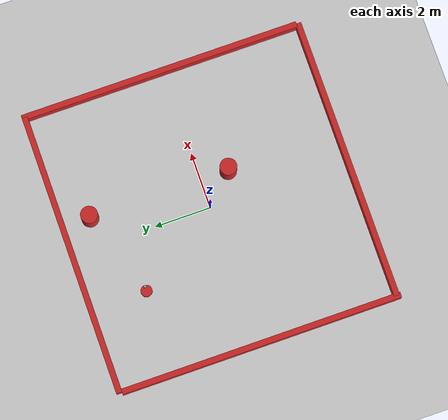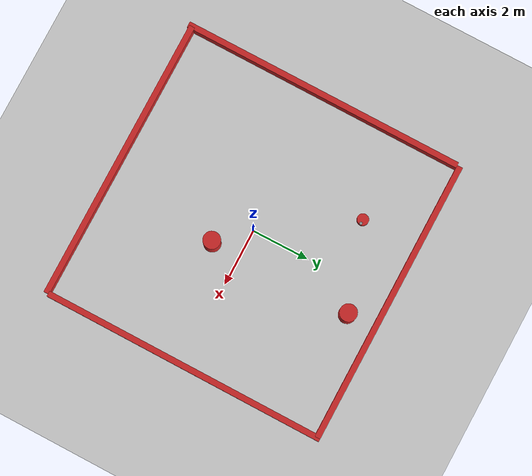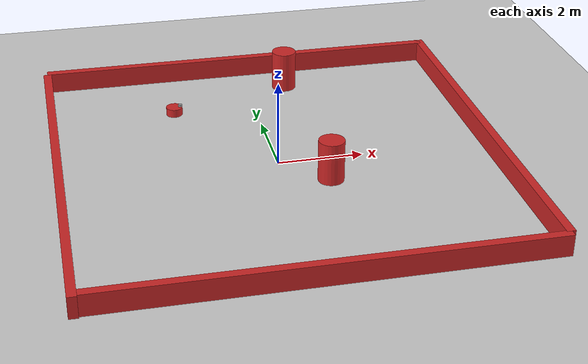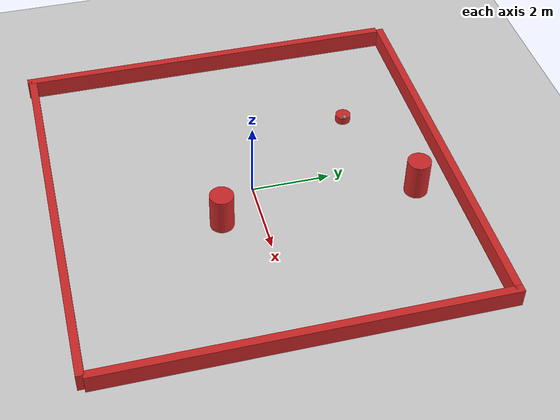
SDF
<?xml version="1.0"?>
<sdf version="1.4">
  <world name="default">
    <!-- World Camera -->
    <gui>
        <camera name='camera_view'>
        <pose>-12 0 3 0 0.2 0</pose>
        </camera>
    </gui>

    <!-- Ground -->
    <include>
      <uri>model://ground_plane</uri>
    </include>

    <!-- Global light source -->
     <include>
      <uri>model://sun</uri>
    </include>

    <!-- Robot model -->
    <include>
      <pose>-2 3 0 0 0 0</pose>
      <uri>model://DAC_Bug</uri>
    </include>

    <!-- Wall -->
    <include>
        <uri>model://square_arena</uri>
    </include>

  </world>
</sdf>

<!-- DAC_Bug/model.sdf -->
<sdf version='1.4'>
  <!-- Robot model -->
  <model name="SDIC_Bug">
    <!-- Body elements -->
    <link name='bug'>
      <pose>0 0 .1 0 0 0</pose>
      <inertial>
	<mass>5</mass>
	<inertia>
	  <ixx>1</ixx>
	  <ixy>0</ixy>
	  <ixz>0</ixz>
	  <iyy>1</iyy>
	  <iyz>0</iyz>
	  <izz>1</izz>
	</inertia>
      </inertial>
      <collision name='collision'>
	<geometry>
	  <cylinder>
	    <radius>.2</radius>
	    <length>.2</length>
	  </cylinder>
	</geometry>
	<surface>
	  <friction>
	    <ode>
	      <mu>0.1</mu>
	      <mu2>0</mu2>
	      <slip1>0.0</slip1>
	      <slip2>0.0</slip2>
	    </ode>
	  </friction>
	</surface>
      </collision>

      <visual name='visual'>
	<geometry>
	  <cylinder>
	    <radius>.2</radius>
	    <length>.2</length>
	  </cylinder>
	</geometry>
	<material>
	  <script>
	    <uri>file://media/materials/scripts/gazebo.material</uri>
	    <name>Gazebo/Red</name>
	  </script>
	</material>
      </visual>

      <visual name='visualCamera'>
	<pose>0.15 0 .125 0 0 0</pose>
	<geometry>
	  <cylinder>
	    <radius>.05</radius>
	    <length>.05</length>
	  </cylinder>
	</geometry>
	<material>
	  <script>
	    <uri>file://media/materials/scripts/gazebo.material</uri>
	    <name>Gazebo/Grey</name>
	  </script>
	</material>
      </visual>

      <!-- Sensors -->
      <!-- Proximity sensor -->
      <sensor name="laser" type="ray">
	<pose>0 0 0.075 0 0 0 </pose>
	<ray>
	<scan>
	  <horizontal>
	    <samples>32</samples>
	    <resolution>1</resolution>
	    <min_angle>-3</min_angle>
	    <max_angle>3</max_angle>
	  </horizontal>
	</scan>
	<range>
	  <min>0.205</min>
	  <max>2.0</max>
	  <resolution>0.01</resolution>
	</range>
	<noise>
	  <type>gaussian</type>
	  <mean>0.0</mean>
	  <stddev>0.02</stddev>
	</noise>
      </ray>
      <always_on>1</always_on>
      <update_rate>25</update_rate>
      <visualize>0</visualize>
      </sensor>

      <!-- Proximity sensor -->
      <sensor name="laser_target" type="ray">
	<pose>0 0 0.25 0 0 0 </pose>
	<ray>
	<scan>
	  <horizontal>
	    <samples>32</samples>
	    <resolution>1</resolution>
	    <min_angle>-3</min_angle>
	    <max_angle>3</max_angle>
	  </horizontal>
	</scan>
	<range>
	  <min>0.26</min>
	  <max>2.5</max>
	  <resolution>0.01</resolution>
	</range>
	<noise>
	  <type>gaussian</type>
	  <mean>0.0</mean>
	  <stddev>0.02</stddev>
	</noise>
      </ray>
      <always_on>1</always_on>
      <update_rate>25</update_rate>
      <visualize>0</visualize>
      </sensor>

      <!-- Proximity sensor Gripper -->
      <sensor name="camera" type="camera">
	<pose>0.2 0 0.25 0 1.1 0</pose>
	<camera>
	  <horizontal_fov>0.8047</horizontal_fov>
          <image>
            <width>32</width>
            <height>28</height>
          </image>
          <clip>
            <near>0.02</near>
            <far>20</far>
          </clip>
	  <noise>
	    <type>gaussian</type>
	    <mean>0.0</mean>
	    <stddev>0.001</stddev>
	  </noise>
	</camera>
	<always_on>1</always_on>
	<update_rate>30</update_rate>
	<visualize>0</visualize>
      </sensor>
    </link>

    <plugin name="model_vel" filename="libvel_plugin.so" />
    <plugin name="model_reset" filename="libreset_plugin.so" />
  </model>
</sdf>

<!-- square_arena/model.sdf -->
<sdf version='1.4'>
  <model name='square_arena'>
    <link name='Wall_0'>
      <collision name='Wall_0_Collision'>
        <geometry>
          <box>
            <size>10.0 0.2 0.5</size>
          </box>
        </geometry>
        <pose>0 0 0.25 0 -0 0</pose>
      </collision>
      <visual name='Wall_0_Visual'>
        <pose>0 0 0.25 0 -0 0</pose>
        <geometry>
          <box>
            <size>10.0 0.2 0.5</size>
          </box>
        </geometry>
        <material>
          <script>
            <uri>file://media/materials/scripts/gazebo.material</uri>
            <name>Gazebo/Red</name>
          </script>
        </material>
      </visual>
      <velocity_decay>
        <linear>0</linear>
        <angular>0</angular>
      </velocity_decay>
      <pose>0 5 0 0 -0 3.14159</pose>
    </link>
    <link name='Wall_2'>
      <collision name='Wall_2_Collision'>
        <geometry>
          <box>
            <size>10 0.2 0.5</size>
          </box>
        </geometry>
        <pose>0 0 0.25 0 -0 0</pose>
      </collision>
      <visual name='Wall_2_Visual'>
        <pose>0 0 0.25 0 -0 0</pose>
        <geometry>
          <box>
            <size>10 0.2 0.5</size>
          </box>
        </geometry>
        <material>
          <script>
            <uri>file://media/materials/scripts/gazebo.material</uri>
            <name>Gazebo/Red</name>
          </script>
        </material>
      </visual>
      <velocity_decay>
        <linear>0</linear>
        <angular>0</angular>
      </velocity_decay>
      <pose>-5 -0.1 0 0 -0 1.5708</pose>
    </link>
    <link name='Wall_4'>
      <collision name='Wall_4_Collision'>
        <geometry>
          <box>
            <size>10 0.2 0.5</size>
          </box>
        </geometry>
        <pose>0 0 0.25 0 -0 0</pose>
      </collision>
      <visual name='Wall_4_Visual'>
        <pose>0 0 0.25 0 -0 0</pose>
        <geometry>
          <box>
            <size>10 0.2 0.5</size>
          </box>
        </geometry>
        <material>
          <script>
            <uri>file://media/materials/scripts/gazebo.material</uri>
            <name>Gazebo/Red</name>
          </script>
        </material>
      </visual>
      <velocity_decay>
        <linear>0</linear>
        <angular>0</angular>
      </velocity_decay>
      <pose>5 0.1 0 0 0 -1.5708</pose>
    </link>
    <link name='Wall_7'>
      <collision name='Wall_7_Collision'>
        <geometry>
          <box>
            <size>10.0 0.2 0.5</size>
          </box>
        </geometry>
        <pose>0 0 0.25 0 -0 0</pose>
      </collision>
      <visual name='Wall_7_Visual'>
        <pose>0 0 0.25 0 -0 0</pose>
        <geometry>
          <box>
            <size>10.0 0.2 0.5</size>
          </box>
        </geometry>
        <material>
          <script>
            <uri>file://media/materials/scripts/gazebo.material</uri>
            <name>Gazebo/Red</name>
          </script>
        </material>
      </visual>
      <velocity_decay>
        <linear>0</linear>
        <angular>0</angular>
      </velocity_decay>
      <pose>0.013664 -4.96178 0 0 -0 0</pose>
    </link>
    <static>1</static>
  </model>
    <!-- Two columns in the world -->
        <model name='unit_cylinder_1'>
      <pose>1 -1 0.5 0 -0 0</pose>
      <link name='link'>
        <inertial>
          <mass>1</mass>
          <inertia>
            <ixx>1</ixx>
            <ixy>0</ixy>
            <ixz>0</ixz>
            <iyy>1</iyy>
            <iyz>0</iyz>
            <izz>1</izz>
          </inertia>
        </inertial>
        <collision name='collision'>
          <geometry>
            <cylinder>
              <radius>0.3</radius>
              <length>1</length>
            </cylinder>
          </geometry>
          <max_contacts>10</max_contacts>
          <surface>
            <bounce/>
            <friction>
              <ode/>
            </friction>
            <contact>
              <ode/>
            </contact>
          </surface>
        </collision>
        <visual name='visual'>
          <geometry>
            <cylinder>
              <radius>0.3</radius>
              <length>1</length>
            </cylinder>
          </geometry>
          <material>
            <script>
              <uri>file://media/materials/scripts/gazebo.material</uri>
              <name>Gazebo/Red</name>
            </script>
          </material>
        </visual>
        <velocity_decay>
          <linear>0</linear>
          <angular>0</angular>
        </velocity_decay>
        <self_collide>0</self_collide>
        <kinematic>0</kinematic>
        <gravity>1</gravity>
      </link>
      <static>1</static>
    </model>
    <model name='unit_cylinder_2'>
      <pose>1 4 0.5 0 -0 0</pose>
      <link name='link'>
        <inertial>
          <mass>1</mass>
          <inertia>
            <ixx>1</ixx>
            <ixy>0</ixy>
            <ixz>0</ixz>
            <iyy>1</iyy>
            <iyz>0</iyz>
            <izz>1</izz>
          </inertia>
        </inertial>
        <collision name='collision'>
          <geometry>
            <cylinder>
              <radius>0.3</radius>
              <length>1</length>
            </cylinder>
          </geometry>
          <max_contacts>10</max_contacts>
          <surface>
            <bounce/>
            <friction>
              <ode/>
            </friction>
            <contact>
              <ode/>
            </contact>
          </surface>
        </collision>
        <visual name='visual'>
          <geometry>
            <cylinder>
              <radius>0.3</radius>
              <length>1</length>
            </cylinder>
          </geometry>
          <material>
            <script>
              <uri>file://media/materials/scripts/gazebo.material</uri>
              <name>Gazebo/Red</name>
            </script>
          </material>
        </visual>
        <velocity_decay>
          <linear>0</linear>
          <angular>0</angular>
        </velocity_decay>
        <self_collide>0</self_collide>
        <kinematic>0</kinematic>
        <gravity>1</gravity>
      </link>
      <static>1</static>
    </model>

</sdf>
